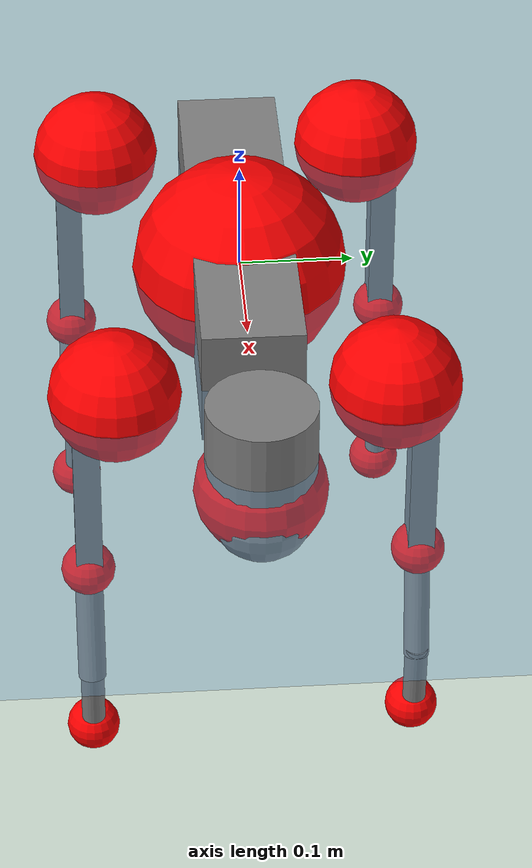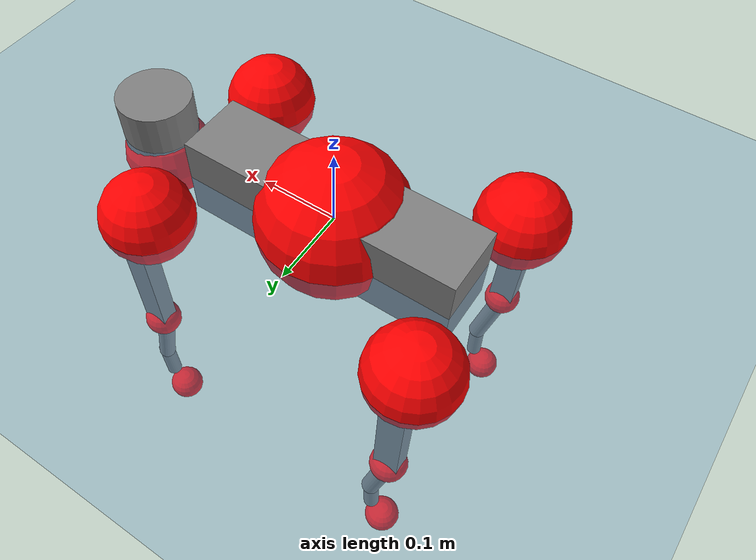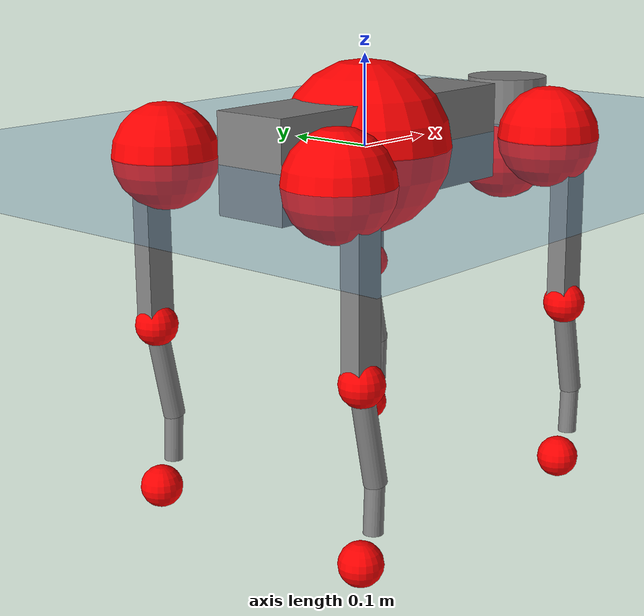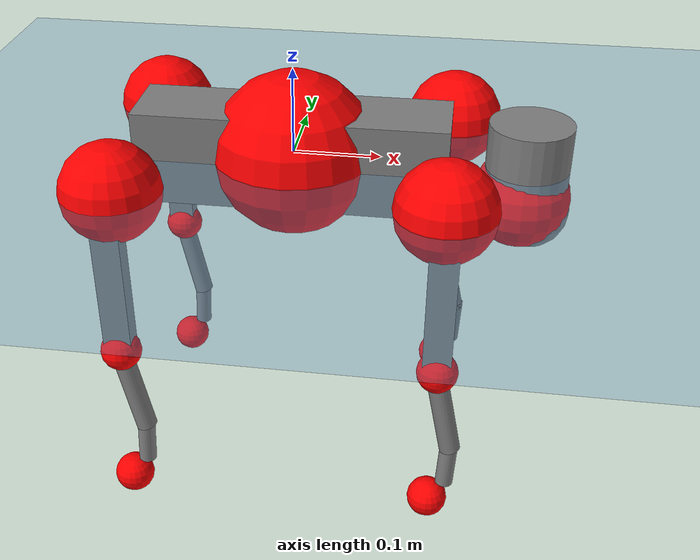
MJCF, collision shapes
<mujoco model="go2">
  <compiler angle="radian" assetdir="assets" balanceinertia="true" inertiafromgeom="false"/>

  <option timestep="0.005" density="1.2" viscosity="2e-05"/>

  <size nkey="1"/>

  <visual>
    <quality shadowsize="8192"/>
    <map shadowclip="0.5"/>
  </visual>

  <default>
    <default class="/">
      <geom contype="0" conaffinity="0" group="1" solref="-1000 -80"/>
      <site size="0.01 0.005 0.005" group="5"/>
      <general forcelimited="true" biastype="affine" gainprm="20" biasprm="0 -20 -0.5"/>
      <default class="go2">
        <joint armature="0.01" damping="0.01" frictionloss="0.2"/>
        <geom condim="1" margin="0.001"/>
        <default class="visual">
          <geom type="mesh" group="2"/>
        </default>
        <default class="collision">
          <geom group="3"/>
          <default class="foot">
            <geom size="0.022 0 0" condim="6" priority="1" friction="0.8 0.02 0.01" solimp="0.015 1 0.022"/>
          </default>
        </default>
        <default class="reward_collision_sphere">
          <geom group="5" rgba="1 0 0 1"/>
        </default>
      </default>
    </default>
  </default>

  <asset>
    <texture type="skybox" colorspace="auto" name="//unnamed_texture_0" builtin="gradient" rgb1="0.95 0.95 0.95" rgb2="0.95 0.95 0.95" width="100" height="600"/>
    <texture type="2d" colorspace="auto" name="texplane" builtin="checker" rgb1="0.345 0.575 0.748" rgb2="0.345 0.575 0.748" markrgb="1 1 1" width="512" height="512"/>
    <material name="MatPlane" class="/" texture="texplane" texuniform="true" texrepeat="2 2" specular="0.9"/>
    <material name="metal" class="/" rgba="0.9 0.95 0.95 1"/>
    <material name="black" class="/" rgba="0 0 0 1"/>
    <material name="white" class="/"/>
    <material name="gray" class="/" rgba="0.671705 0.692426 0.77427 1"/>
    <mesh name="base_0" class="/" file="base_0.obj"/>
    <mesh name="base_1" class="/" file="base_1.obj"/>
    <mesh name="base_2" class="/" file="base_2.obj"/>
    <mesh name="base_3" class="/" file="base_3.obj"/>
    <mesh name="base_4" class="/" file="base_4.obj"/>
    <mesh name="hip_0" class="/" file="hip_0.obj"/>
    <mesh name="hip_1" class="/" file="hip_1.obj"/>
    <mesh name="thigh_0" class="/" file="thigh_0.obj"/>
    <mesh name="thigh_1" class="/" file="thigh_1.obj"/>
    <mesh name="thigh_mirror_0" class="/" file="thigh_mirror_0.obj"/>
    <mesh name="thigh_mirror_1" class="/" file="thigh_mirror_1.obj"/>
    <mesh name="calf_0" class="/" file="calf_0.obj"/>
    <mesh name="calf_1" class="/" file="calf_1.obj"/>
    <mesh name="calf_mirror_0" class="/" file="calf_mirror_0.obj"/>
    <mesh name="calf_mirror_1" class="/" file="calf_mirror_1.obj"/>
    <mesh name="foot" class="/" file="foot.obj"/>
  </asset>

  <worldbody>
    <geom name="floor" class="/" size="100 100 0.125" type="plane" group="0" material="MatPlane"/>
    <light name="toplight_shadow" class="/" pos="0 0 5" dir="0.0990148 0.0990148 -0.990148" type="directional" ambient="0.04 0.04 0.04" diffuse="0.55 0.55 0.55" specular="0.12 0.12 0.12"/>
    <light name="toplight_fill" class="/" pos="0 0 5" dir="0.0990148 0.0990148 -0.990148" type="directional" castshadow="false" ambient="0.04 0.04 0.04" diffuse="0.3 0.3 0.3" specular="0.08 0.08 0.08"/>
    <body name="trunk" childclass="go2" pos="-8.40507e-05 -1.25082e-05 0.000214017" quat="1 2.56607e-05 8.84294e-05 -0.000133588">
      <inertial pos="0.0196354 0.00120896 -0.00451299" quat="-0.000779112 0.713571 -0.00177832 0.70058" mass="5.9573" diaginertia="0.076592 0.111384 0.0134892"/>
      <joint name="//unnamed_joint_0" type="free" armature="0" damping="0" frictionloss="0"/>
      <geom name="//unnamed_geom_1" class="visual" material="black" mesh="base_0"/>
      <geom name="//unnamed_geom_2" class="visual" material="black" mesh="base_1"/>
      <geom name="//unnamed_geom_3" class="visual" material="black" mesh="base_2"/>
      <geom name="//unnamed_geom_4" class="visual" material="white" mesh="base_3"/>
      <geom name="//unnamed_geom_5" class="visual" material="gray" mesh="base_4"/>
      <geom name="trunk_1" class="collision" size="0.178008 0.0442418 0.0539419" type="box"/>
      <geom name="trunk_2" class="collision" size="0.0473174 0.0425857" pos="0.265374 0 0.00885149" type="cylinder"/>
      <geom name="trunk_3" class="collision" size="0.0444784" pos="0.272823 0 -0.0531089"/>
      <geom name="//unnamed_geom_9" class="reward_collision_sphere" size="0.0946348"/>
      <geom name="//unnamed_geom_10" class="reward_collision_sphere" size="0.0567809" pos="0.260718 0 -0.0398317"/>
      <site name="imu" pos="-0.0274032 0.0044264 0.0332837" size="0.00946348"/>
      <camera name="track" pos="0 -2.04552 0" quat="0.707107 0.707107 0 0" mode="trackcom"/>
      <camera name="ego_camera" pos="0.290515 0 0.0398317" quat="-0.5 -0.5 0.5 0.5"/>
      <body name="FL_hip" pos="0.179051 0.0484336 0.000694863" quat="1 1.9842e-05 -4.78384e-05 8.57727e-06">
        <inertial pos="-0.00565856 0.00238392 0.000759136" quat="0.495462 0.501343 0.50524 0.497901" mass="0.578948" diaginertia="0.000621825 0.000678135 0.000259409"/>
        <joint name="FL_hip_joint" pos="0 0 0" axis="0.999991 0.00427075 -3.4645e-05" stiffness="0.000670248" range="-1.03003 1.05002" armature="0.00913224" damping="0.00174469" frictionloss="0.184118"/>
        <geom name="//unnamed_geom_11" class="visual" material="metal" mesh="hip_0"/>
        <geom name="//unnamed_geom_12" class="visual" material="gray" mesh="hip_1"/>
        <geom name="//unnamed_geom_13" class="collision" size="0.043532 0.018927" pos="0 0.0818207 0" quat="0.707107 0.707107 0 0" type="cylinder"/>
        <geom name="//unnamed_geom_14" class="reward_collision_sphere" size="0.0567809" pos="0 0.0715931 0"/>
        <body name="FL_thigh" pos="-0.000386318 0.0971459 0.00167539" quat="1 -2.55179e-05 4.07218e-06 2.32379e-05">
          <inertial pos="-0.00328746 -0.022801 -0.0279375" quat="0.829711 0.0844147 -0.021222 0.551365" mass="0.963369" diaginertia="0.00418257 0.00647536 0.000461737"/>
          <joint name="FL_thigh_joint" pos="0 0 0" axis="-0.00124798 0.999999 -0.000113187" stiffness="0.00675128" range="-1.5561 3.47175" armature="0.00949718" damping="0.00291548" frictionloss="0.192764"/>
          <geom name="//unnamed_geom_15" class="visual" material="metal" mesh="thigh_0"/>
          <geom name="//unnamed_geom_16" class="visual" material="gray" mesh="thigh_1"/>
          <geom name="//unnamed_geom_17" class="collision" size="0.100786 0.0115928 0.0160879" pos="0 0 -0.0942683" quat="0.707107 0 0.707107 0" type="box"/>
          <body name="FL_calf" pos="-7.47724e-05 -0.0010624 -0.188281" quat="1 -0.000593392 -0.000247316 4.65733e-05">
            <inertial pos="0.00581438 -0.00053482 -0.124666" quat="0.71074 0.00122796 -0.00458224 0.703438" mass="0.206636" diaginertia="0.00104459 0.00161794 2.89089e-05"/>
            <joint name="FL_calf_joint" pos="0 0 0" axis="-0.00239275 0.999981 0.00560121" stiffness="0.00126517" range="-2.71459 -0.845789" armature="0.00980269" damping="0.00157745" frictionloss="0.191292"/>
            <geom name="//unnamed_geom_18" class="visual" material="gray" mesh="calf_0"/>
            <geom name="//unnamed_geom_19" class="visual" material="black" mesh="calf_1"/>
            <geom name="FL_calf0" class="collision" size="0.0113562 0.0567809" pos="0.0074491 0 -0.0531089" quat="0.994493 0 -0.104807 0" type="cylinder"/>
            <geom name="//unnamed_geom_21" class="collision" size="0.0104098 0.0307563" pos="0.0186227 0 -0.131002" quat="0.999688 0 0.0249974 0" type="cylinder"/>
            <geom name="//unnamed_geom_22" class="visual" pos="0 0 -0.188537" quat="1 0 0 0" material="black" mesh="foot"/>
            <geom name="FL_foot" class="foot" size="0.0180244" pos="-0.00186227 0 -0.188537"/>
            <geom name="//unnamed_geom_24" class="reward_collision_sphere" size="0.0236587"/>
            <geom name="//unnamed_geom_25" class="reward_collision_sphere" size="0.0236587" pos="-0.00186227 0 -0.188537"/>
            <site name="FL_foot" class="foot" pos="-0.00186227 0 -0.188537" size="0.00946348"/>
          </body>
        </body>
      </body>
      <body name="FR_hip" pos="0.179477 -0.0460767 0.000208079" quat="1 -5.81299e-05 3.21905e-05 9.48634e-06">
        <inertial pos="-0.00473715 -0.00173391 -0.000683595" quat="0.498901 0.504958 0.498726 0.497381" mass="0.563886" diaginertia="0.000610196 0.000666525 0.000260918"/>
        <joint name="FR_hip_joint" pos="0 0 0" axis="0.999999 0.00079924 -0.00147925" range="-1.04494 1.02371" armature="0.00953594" damping="0.0106439" frictionloss="0.194906"/>
        <geom name="//unnamed_geom_26" class="visual" pos="0 1.1988e-09 5.14191e-08" quat="4.63268e-05 1 0 0" material="metal" mesh="hip_0"/>
        <geom name="//unnamed_geom_27" class="visual" pos="0 1.9434e-09 -1.27179e-07" quat="4.63268e-05 1 0 0" material="gray" mesh="hip_1"/>
        <geom name="//unnamed_geom_28" class="collision" size="0.043532 0.018927" pos="0 -0.0818207 0" quat="0.707107 0.707107 0 0" type="cylinder"/>
        <geom name="//unnamed_geom_29" class="reward_collision_sphere" size="0.0567809" pos="0 -0.0715931 0"/>
        <body name="FR_thigh" pos="0.00212862 -0.0975219 1.07798e-05" quat="1 -0.0003146 -1.53332e-05 0.000264185">
          <inertial pos="-0.00337128 0.0223883 -0.0288898" quat="0.552292 -0.0200609 0.0839809 0.829167" mass="1.01071" diaginertia="0.00419358 0.0067669 0.000490306"/>
          <joint name="FR_thigh_joint" pos="0 0 0" axis="0.00752647 -0.99997 -0.00196622" range="-3.45351 1.54383" armature="0.00934364" damping="0.00733725" frictionloss="0.188817"/>
          <geom name="//unnamed_geom_30" class="visual" material="metal" mesh="thigh_mirror_0"/>
          <geom name="//unnamed_geom_31" class="visual" material="gray" mesh="thigh_mirror_1"/>
          <geom name="//unnamed_geom_32" class="collision" size="0.100786 0.0115928 0.0160879" pos="0 0 -0.0942683" quat="0.707107 0 0.707107 0" type="box"/>
          <body name="FR_calf" pos="0.0010812 -0.00099509 -0.189176" quat="1 1.95869e-05 4.15606e-05 -0.000122929">
            <inertial pos="0.00655794 0.000643578 -0.123845" quat="0.704729 -0.00477808 0.000619209 0.70946" mass="0.199999" diaginertia="0.00103552 0.00164853 2.90592e-05"/>
            <joint name="FR_calf_joint" pos="0 0 0" axis="-0.00220774 -0.999951 0.00968978" stiffness="0.00102377" range="0.829408 2.71067" armature="0.00944628" damping="0.011863" frictionloss="0.171536"/>
            <geom name="//unnamed_geom_33" class="visual" material="gray" mesh="calf_mirror_0"/>
            <geom name="//unnamed_geom_34" class="visual" material="black" mesh="calf_mirror_1"/>
            <geom name="FR_calf0" class="collision" size="0.0123025 0.0567809" pos="0.00931137 0 -0.0531089" quat="0.995004 0 -0.0998334 0" type="cylinder"/>
            <geom name="//unnamed_geom_36" class="collision" size="0.0104098 0.0307563" pos="0.0186227 0 -0.131002" quat="0.999688 0 0.0249974 0" type="cylinder"/>
            <geom name="//unnamed_geom_37" class="visual" pos="0 0 -0.188537" quat="1 0 0 0" material="black" mesh="foot"/>
            <geom name="FR_foot" class="foot" size="0.0219154" pos="-0.00186227 0 -0.188537"/>
            <geom name="//unnamed_geom_39" class="reward_collision_sphere" size="0.0236587"/>
            <geom name="//unnamed_geom_40" class="reward_collision_sphere" size="0.0236587" pos="-0.00186227 0 -0.188537"/>
            <site name="FR_foot" class="foot" pos="-0.00186227 0 -0.188537" size="0.00946348"/>
          </body>
        </body>
      </body>
      <body name="RL_hip" pos="-0.18034 0.048327 -2.1362e-05" quat="1 -1.79437e-05 -0.000120872 -6.89899e-05">
        <inertial pos="0.00593371 0.00177974 0.000311132" quat="0.507586 0.503232 0.488505 0.500476" mass="0.56013" diaginertia="0.000612988 0.000662229 0.000263788"/>
        <joint name="RL_hip_joint" pos="0 0 0" axis="-0.999892 -0.0139962 -0.00438472" range="-1.04595 1.06478" armature="0.00938956" damping="0.0140935" frictionloss="0.180254"/>
        <geom name="//unnamed_geom_41" class="visual" pos="-4.00634e-10 0 -7.85334e-08" quat="4.63268e-05 0 1 0" material="metal" mesh="hip_0"/>
        <geom name="//unnamed_geom_42" class="visual" pos="-6.49475e-10 0 -6.96479e-08" quat="4.63268e-05 0 1 0" material="gray" mesh="hip_1"/>
        <geom name="//unnamed_geom_43" class="collision" size="0.043532 0.018927" pos="0 0.0818207 0" quat="0.707107 0.707107 0 0" type="cylinder"/>
        <geom name="//unnamed_geom_44" class="reward_collision_sphere" size="0.0567809" pos="0 0.0715931 0"/>
        <body name="RL_thigh" pos="-2.50947e-05 0.097075 -0.000505538" quat="1 0.000414388 -0.000174177 8.58222e-05">
          <inertial pos="-0.00270371 -0.02229 -0.0289475" quat="0.831587 0.0834723 -0.0177011 0.548801" mass="0.987168" diaginertia="0.00420957 0.00671447 0.000479218"/>
          <joint name="RL_thigh_joint" pos="0 0 0" axis="-0.003474 0.99999 0.0028951" range="-0.524739 4.5349" armature="0.00942128" damping="0.00978163" frictionloss="0.189265"/>
          <geom name="//unnamed_geom_45" class="visual" material="metal" mesh="thigh_0"/>
          <geom name="//unnamed_geom_46" class="visual" material="gray" mesh="thigh_1"/>
          <geom name="//unnamed_geom_47" class="collision" size="0.100786 0.0115928 0.0160879" pos="0 0 -0.0942683" quat="0.707107 0 0.707107 0" type="box"/>
          <body name="RL_calf" pos="0.000733928 -0.000319194 -0.189095" quat="1 -0.000199114 -6.04758e-05 0.000236279">
            <inertial pos="0.00599823 1.96989e-05 -0.124821" quat="0.710661 0.00156311 -0.00446781 0.703519" mass="0.207326" diaginertia="0.00107671 0.00170341 3.03555e-05"/>
            <joint name="RL_calf_joint" pos="0 0 0" axis="-0.00856116 0.999933 0.00775736" range="-2.72102 -0.87812" armature="0.00938968" damping="0" frictionloss="0.180166"/>
            <geom name="//unnamed_geom_48" class="visual" material="gray" mesh="calf_0"/>
            <geom name="//unnamed_geom_49" class="visual" material="black" mesh="calf_1"/>
            <geom name="RL_calf0" class="collision" size="0.0123025 0.0567809" pos="0.00931137 0 -0.0531089" quat="0.995004 0 -0.0998334 0" type="cylinder"/>
            <geom name="//unnamed_geom_51" class="collision" size="0.0104098 0.0307563" pos="0.0186227 0 -0.131002" quat="0.999688 0 0.0249974 0" type="cylinder"/>
            <geom name="//unnamed_geom_52" class="visual" pos="0 0 -0.188537" quat="1 0 0 0" material="black" mesh="foot"/>
            <geom name="RL_foot" class="foot" size="0.0169329" pos="-0.00186227 0 -0.188537"/>
            <geom name="//unnamed_geom_54" class="reward_collision_sphere" size="0.0236587"/>
            <geom name="//unnamed_geom_55" class="reward_collision_sphere" size="0.0236587" pos="-0.00186227 0 -0.188537"/>
            <site name="RL_foot" class="foot" pos="-0.00186227 0 -0.188537" size="0.00946348"/>
          </body>
        </body>
      </body>
      <body name="RR_hip" pos="-0.179955 -0.0489654 -0.00186235" quat="1 -0.000339705 -0.000399119 -4.4714e-05">
        <inertial pos="0.00515697 -0.00295128 0.000865972" quat="0.497245 0.504866 0.493988 0.50382" mass="0.580081" diaginertia="0.000617653 0.000679405 0.000262501"/>
        <joint name="RR_hip_joint" pos="0 0 0" axis="-0.999977 -0.00292351 -0.00607119" stiffness="0.00223092" range="-1.06003 1.05057" armature="0.00902112" damping="0.0122363" frictionloss="0.183103"/>
        <geom name="//unnamed_geom_56" class="visual" pos="4.03805e-10 1.1988e-09 -1.29953e-07" quat="2.14617e-09 4.63268e-05 4.63268e-05 -1" material="metal" mesh="hip_0"/>
        <geom name="//unnamed_geom_57" class="visual" pos="6.41629e-10 1.9434e-09 5.75313e-08" quat="2.14617e-09 4.63268e-05 4.63268e-05 -1" material="gray" mesh="hip_1"/>
        <geom name="//unnamed_geom_58" class="collision" size="0.043532 0.018927" pos="0 -0.0818207 0" quat="0.707107 0.707107 0 0" type="cylinder"/>
        <geom name="//unnamed_geom_59" class="reward_collision_sphere" size="0.0567809" pos="0 -0.0715931 0"/>
        <body name="RR_thigh" pos="-9.69256e-06 -0.0981029 -0.00300781" quat="1 -0.000211394 1.8146e-05 0.00015836">
          <inertial pos="-0.00339572 0.0248322 -0.0298714" quat="0.551784 -0.0200163 0.0835528 0.82955" mass="0.952925" diaginertia="0.00406752 0.00640342 0.000463904"/>
          <joint name="RR_thigh_joint" pos="0 0 0" axis="-0.0083486 -0.999963 0.00206138" range="-4.55724 0.498963" armature="0.0104369" damping="0.0169274" frictionloss="0.184272"/>
          <geom name="//unnamed_geom_60" class="visual" material="metal" mesh="thigh_mirror_0"/>
          <geom name="//unnamed_geom_61" class="visual" material="gray" mesh="thigh_mirror_1"/>
          <geom name="//unnamed_geom_62" class="collision" size="0.100786 0.0115928 0.0160879" pos="0 0 -0.0942683" quat="0.707107 0 0.707107 0" type="box"/>
          <body name="RR_calf" pos="0.000276147 -0.00105755 -0.188714" quat="1 9.69554e-05 -1.20467e-05 -4.28476e-06">
            <inertial pos="0.00466392 0.00103226 -0.125387" quat="0.699426 0.000153328 -0.000848786 0.714705" mass="0.204172" diaginertia="0.00106025 0.00166783 2.99343e-05"/>
            <joint name="RR_calf_joint" pos="0 0 0" axis="8.53259e-05 -1 0.000289419" stiffness="0.00343925" range="0.845623 2.74532" armature="0.00954317" damping="0.0103686" frictionloss="0.194235"/>
            <geom name="//unnamed_geom_63" class="visual" material="gray" mesh="calf_mirror_0"/>
            <geom name="//unnamed_geom_64" class="visual" material="black" mesh="calf_mirror_1"/>
            <geom name="RR_calf0" class="collision" size="0.0123025 0.0567809" pos="0.00931137 0 -0.0531089" quat="0.995004 0 -0.0998334 0" type="cylinder"/>
            <geom name="//unnamed_geom_66" class="collision" size="0.0104098 0.0307563" pos="0.0186227 0 -0.131002" quat="0.999688 0 0.0249974 0" type="cylinder"/>
            <geom name="//unnamed_geom_67" class="visual" pos="0 0 -0.188537" quat="1 0 0 0" material="black" mesh="foot"/>
            <geom name="RR_foot" class="foot" size="0.020988" pos="-0.00186227 0 -0.188537"/>
            <geom name="//unnamed_geom_69" class="reward_collision_sphere" size="0.0236587"/>
            <geom name="//unnamed_geom_70" class="reward_collision_sphere" size="0.0236587" pos="-0.00186227 0 -0.188537"/>
            <site name="RR_foot" class="foot" pos="-0.00186227 0 -0.188537" size="0.00946348"/>
          </body>
        </body>
      </body>
    </body>
  </worldbody>

  <contact>
    <pair class="/" geom1="floor" geom2="FL_foot" name="//unnamed_contact_0"/>
    <pair class="/" geom1="floor" geom2="FR_foot" name="//unnamed_contact_1"/>
    <pair class="/" geom1="floor" geom2="RL_foot" name="//unnamed_contact_2"/>
    <pair class="/" geom1="floor" geom2="RR_foot" name="//unnamed_contact_3"/>
  </contact>

  <actuator>
    <general name="FL_hip" class="/" joint="FL_hip_joint" forcerange="-23.0775 23.0775" gainprm="19.6884" biasprm="0 -19.6884 -0.462813"/>
    <general name="FL_thigh" class="/" joint="FL_thigh_joint" forcerange="-20.9182 20.9182" gainprm="19.6884" biasprm="0 -19.6884 -0.462813"/>
    <general name="FL_calf" class="/" joint="FL_calf_joint" forcerange="-42.3825 42.3825" gainprm="19.6884" biasprm="0 -19.6884 -0.462813"/>
    <general name="FR_hip" class="/" joint="FR_hip_joint" forcerange="-22.6924 22.6924" gainprm="19.6884" biasprm="0 -19.6884 -0.462813"/>
    <general name="FR_thigh" class="/" joint="FR_thigh_joint" forcerange="-21.6785 21.6785" gainprm="19.6884" biasprm="0 -19.6884 -0.462813"/>
    <general name="FR_calf" class="/" joint="FR_calf_joint" forcerange="-44.296 44.296" gainprm="19.6884" biasprm="0 -19.6884 -0.462813"/>
    <general name="RL_hip" class="/" joint="RL_hip_joint" forcerange="-22.0611 22.0611" gainprm="19.6884" biasprm="0 -19.6884 -0.462813"/>
    <general name="RL_thigh" class="/" joint="RL_thigh_joint" forcerange="-22.4771 22.4771" gainprm="19.6884" biasprm="0 -19.6884 -0.462813"/>
    <general name="RL_calf" class="/" joint="RL_calf_joint" forcerange="-44.497 44.497" gainprm="19.6884" biasprm="0 -19.6884 -0.462813"/>
    <general name="RR_hip" class="/" joint="RR_hip_joint" forcerange="-20.9369 20.9369" gainprm="19.6884" biasprm="0 -19.6884 -0.462813"/>
    <general name="RR_thigh" class="/" joint="RR_thigh_joint" forcerange="-22.0749 22.0749" gainprm="19.6884" biasprm="0 -19.6884 -0.462813"/>
    <general name="RR_calf" class="/" joint="RR_calf_joint" forcerange="-42.4063 42.4063" gainprm="19.6884" biasprm="0 -19.6884 -0.462813"/>
  </actuator>

  <sensor>
    <gyro site="imu" name="imu_angular_velocity"/>
    <velocimeter site="imu" name="imu_linear_velocity"/>
    <framelinvel objtype="site" objname="FL_foot" name="FL_foot_global_linear_velocity"/>
    <framelinvel objtype="site" objname="FR_foot" name="FR_foot_global_linear_velocity"/>
    <framelinvel objtype="site" objname="RL_foot" name="RL_foot_global_linear_velocity"/>
    <framelinvel objtype="site" objname="RR_foot" name="RR_foot_global_linear_velocity"/>
  </sensor>

  <keyframe>
    <key name="home" qpos="0 0 0.325 1 0 0 0 0.1 0.8 -1.5 -0.1 -0.8 1.5 -0.1 0.8 -1.5 0.1 -0.8 1.5"/>
  </keyframe>
</mujoco>
